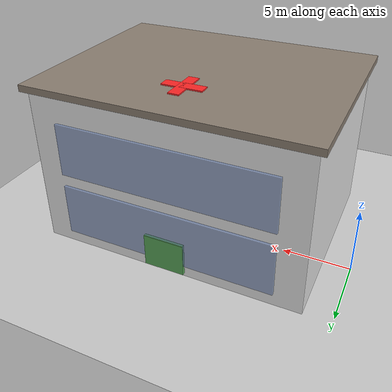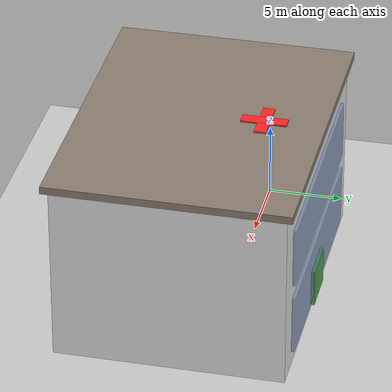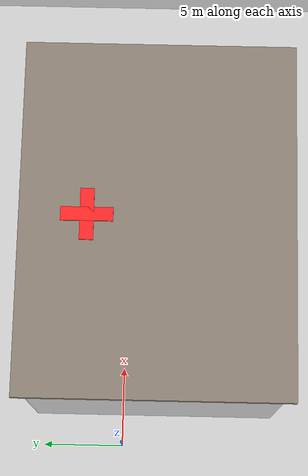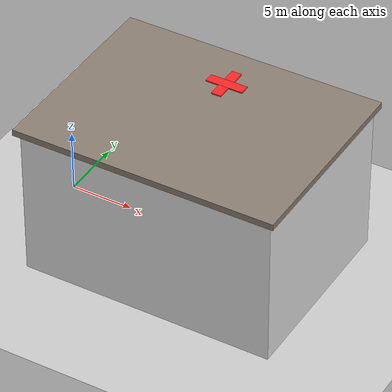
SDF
<?xml version="1.0"?>
<sdf version="1.9">
  <world name="default">

    <include>
      <uri>model://ground_plane</uri>
    </include>

    <include>
      <uri>model://sun</uri>
    </include>

    <scene>
      <shadows>false</shadows>
    </scene>

    <gui fullscreen='0'>
      <camera name='user_camera'>
        <pose frame=''>0.319654 -0.235002 9.29441 0 1.5138 0.009599</pose>
        <view_controller>orbit</view_controller>
        <projection_type>perspective</projection_type>
      </camera>
    </gui>

    <physics type="ode">
      <real_time_update_rate>1000.0</real_time_update_rate>
      <max_step_size>0.001</max_step_size>
      <real_time_factor>1</real_time_factor>
      <ode>
        <solver>
          <type>quick</type>
          <iters>150</iters>
          <precon_iters>0</precon_iters>
          <sor>1.400000</sor>
          <use_dynamic_moi_rescaling>1</use_dynamic_moi_rescaling>
        </solver>
        <constraints>
          <cfm>0.00001</cfm>
          <erp>0.2</erp>
          <contact_max_correcting_vel>2000.000000</contact_max_correcting_vel>
          <contact_surface_layer>0.01000</contact_surface_layer>
        </constraints>
      </ode>
    </physics>

    <model name="hospital">
	<static>1</static>
	<include>
	  <uri>model://hospital</uri>
          <pose>12.0 -2.0 0.0 0.0 0.0 0.0</pose>
	</include>
    </model>

  </world>
</sdf>

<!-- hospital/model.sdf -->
<sdf version="1.9">
  <model name="hospital">
    <static>true</static>
    <link name="main">
      <collision name="col">
        <pose>0 0 6 0 0 0</pose>
        <geometry><box><size>20 15 12</size></box></geometry>
      </collision>
      <!-- Main building -->
      <visual name="walls">
        <pose>0 0 6 0 0 0</pose>
        <geometry><box><size>20 15 12</size></box></geometry>
        <material>
          <ambient>0.85 0.85 0.85 1</ambient>
          <diffuse>0.9 0.9 0.9 1</diffuse>
          <specular>0.1 0.1 0.1 1</specular>
        </material>
      </visual>
      <!-- Windows front row 1 -->
      <visual name="w_front_1">
        <pose>0 7.6 8 0 0 0</pose>
        <geometry><box><size>16 0.2 4</size></box></geometry>
        <material>
          <ambient>0.4 0.5 0.7 0.6</ambient>
          <diffuse>0.45 0.55 0.75 0.6</diffuse>
          <specular>0.3 0.3 0.3 1</specular>
        </material>
      </visual>
      <!-- Windows front row 2 -->
      <visual name="w_front_2">
        <pose>0 7.6 3 0 0 0</pose>
        <geometry><box><size>16 0.2 4</size></box></geometry>
        <material>
          <ambient>0.4 0.5 0.7 0.6</ambient>
          <diffuse>0.45 0.55 0.75 0.6</diffuse>
          <specular>0.3 0.3 0.3 1</specular>
        </material>
      </visual>
      <!-- Roof -->
      <visual name="roof">
        <pose>0 0 12.3 0 0 0</pose>
        <geometry><box><size>20.8 15.8 0.5</size></box></geometry>
        <material>
          <ambient>0.5 0.45 0.4 1</ambient>
          <diffuse>0.55 0.5 0.45 1</diffuse>
        </material>
      </visual>
      <!-- Red cross on roof -->
      <visual name="cross_h">
        <pose>0 4 12.8 0 0 0</pose>
        <geometry><box><size>3 0.8 0.1</size></box></geometry>
        <material>
          <ambient>0.9 0.1 0.1 1</ambient>
          <diffuse>1 0.15 0.15 1</diffuse>
          <emissive>0.3 0.05 0.05 1</emissive>
        </material>
      </visual>
      <visual name="cross_v">
        <pose>0 4 12.8 0 0 0</pose>
        <geometry><box><size>0.8 3 0.1</size></box></geometry>
        <material>
          <ambient>0.9 0.1 0.1 1</ambient>
          <diffuse>1 0.15 0.15 1</diffuse>
          <emissive>0.3 0.05 0.05 1</emissive>
        </material>
      </visual>
      <!-- Entrance -->
      <visual name="entrance">
        <pose>0 7.6 1.5 0 0 0</pose>
        <geometry><box><size>3 0.3 2.5</size></box></geometry>
        <material>
          <ambient>0.3 0.6 0.3 1</ambient>
          <diffuse>0.35 0.65 0.35 1</diffuse>
        </material>
      </visual>
    </link>
  </model>
</sdf>
